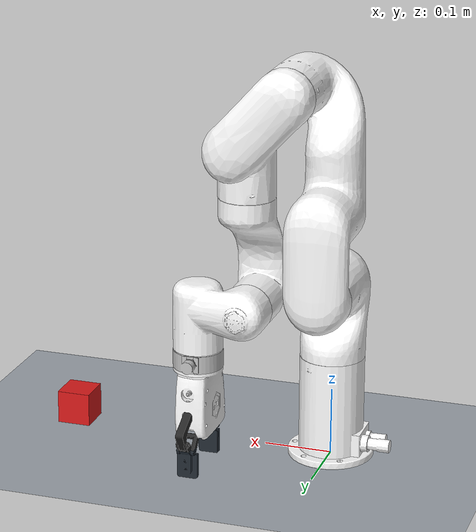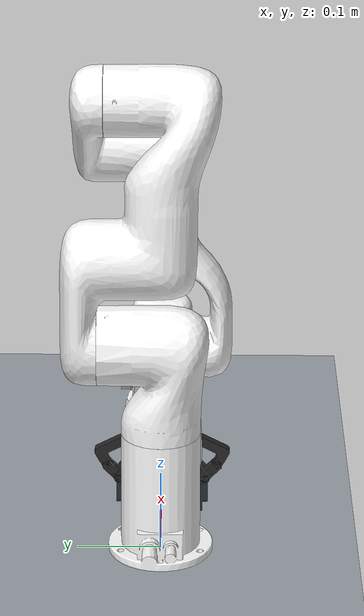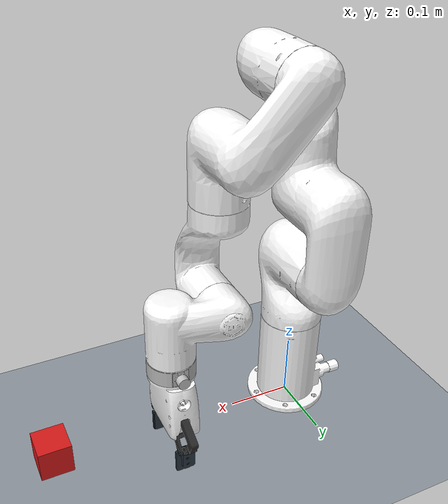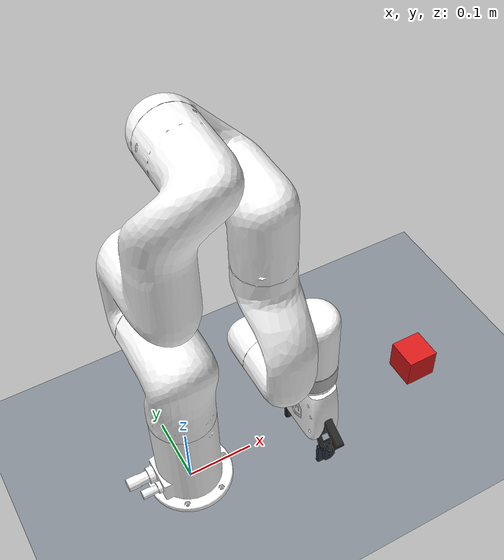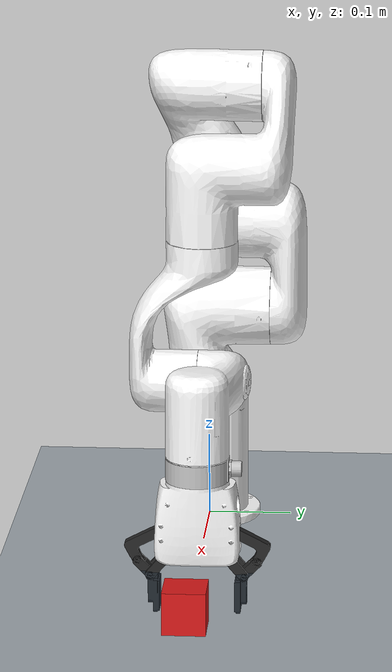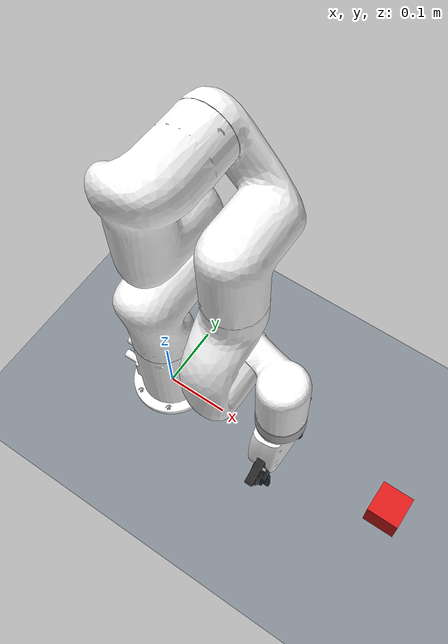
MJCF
<mujoco model="xarm6 scene">
  <include file="xarm6_gripper.xml"/>

  <statistic center="0.2 0 0.4" extent="1.0" meansize="0.05"/>

  <visual>
    <headlight diffuse="0.6 0.6 0.6" ambient="0.3 0.3 0.3" specular="0 0 0"/>
    <rgba haze="0.15 0.25 0.35 1"/>
    <global azimuth="120" elevation="-20" offwidth="1280" offheight="960"/>
  </visual>

  <asset>
    <texture type="skybox" builtin="gradient" rgb1="0.3 0.5 0.7" rgb2="0 0 0" width="512" height="3072"/>
    <texture type="2d" name="groundplane" builtin="checker" mark="edge" rgb1="0.2 0.3 0.4" rgb2="0.1 0.2 0.3"
      markrgb="0.8 0.8 0.8" width="300" height="300"/>
    <material name="groundplane" texture="groundplane" texuniform="true" texrepeat="5 5" reflectance="0.2"/>
  </asset>

  <worldbody>
    <light pos="0 0 1.5" dir="0 0 -1" directional="true"/>
    <geom name="floor" size="0 0 0.05" type="plane" material="groundplane"/>

    <!-- 5 cm red cube, 0.4 m in front of the arm base, well inside the reach. -->
    <body name="red_block" pos="0.4 0 0.025">
      <freejoint name="red_block_joint"/>
      <geom name="red_block" type="box" size="0.025 0.025 0.025" mass="0.1" rgba="0.85 0.1 0.1 1"
        friction="1 0.005 0.0001"/>
    </body>
  </worldbody>

  <keyframe>
    <key name="home"
      qpos="0 -0.3 -1.2 0 1.5 0
            0 0 0 0 0 0
            0.4 0 0.025 1 0 0 0"
      ctrl="0 -0.3 -1.2 0 1.5 0 0"/>
  </keyframe>
</mujoco>

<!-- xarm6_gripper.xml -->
<mujoco model="UF_ROBOT">
  <compiler angle="radian" autolimits="true"/>

  <!-- implicitfast keeps the stiff gripper linkage stable. -->
  <option integrator="implicitfast"/>

  <asset>
    <material name="gripper_white" rgba="1 1 1 1"/>
    <material name="gripper_black" rgba="0.149 0.149 0.149 1"/>

    <mesh name="link_base" file="/home/jtr20003/xarm/xarm_ros2/xarm_description/meshes/xarm6/visual/link_base.stl"/>
    <mesh name="link1" file="/home/jtr20003/xarm/xarm_ros2/xarm_description/meshes/xarm6/visual/link1.stl"/>
    <mesh name="link2" file="/home/jtr20003/xarm/xarm_ros2/xarm_description/meshes/xarm6/visual/link2.stl"/>
    <mesh name="link3" file="/home/jtr20003/xarm/xarm_ros2/xarm_description/meshes/xarm6/visual/link3.stl"/>
    <mesh name="link4" file="/home/jtr20003/xarm/xarm_ros2/xarm_description/meshes/xarm6/visual/link4.stl"/>
    <mesh name="link5" file="/home/jtr20003/xarm/xarm_ros2/xarm_description/meshes/xarm6/visual/link5.stl"/>
    <mesh name="link6" file="/home/jtr20003/xarm/xarm_ros2/xarm_description/meshes/xarm6/visual/link6.stl"/>
    <mesh name="end_tool" file="/home/jtr20003/xarm/xarm_ros2/xarm_description/meshes/end_tool/collision/end_tool.stl"/>
    <mesh name="base_link" file="/home/jtr20003/xarm/xarm_ros2/xarm_description/meshes/gripper/xarm/base_link.stl"/>
    <mesh name="left_outer_knuckle" file="/home/jtr20003/xarm/xarm_ros2/xarm_description/meshes/gripper/xarm/left_outer_knuckle.stl"/>
    <mesh name="left_finger" file="/home/jtr20003/xarm/xarm_ros2/xarm_description/meshes/gripper/xarm/left_finger.stl"/>
    <mesh name="left_inner_knuckle" file="/home/jtr20003/xarm/xarm_ros2/xarm_description/meshes/gripper/xarm/left_inner_knuckle.stl"/>
    <mesh name="right_outer_knuckle" file="/home/jtr20003/xarm/xarm_ros2/xarm_description/meshes/gripper/xarm/right_outer_knuckle.stl"/>
    <mesh name="right_finger" file="/home/jtr20003/xarm/xarm_ros2/xarm_description/meshes/gripper/xarm/right_finger.stl"/>
    <mesh name="right_inner_knuckle" file="/home/jtr20003/xarm/xarm_ros2/xarm_description/meshes/gripper/xarm/right_inner_knuckle.stl"/>
  </asset>

  <default>
    <default class="xarm_gripper">
      <geom type="mesh" material="gripper_black"/>
      <joint range="0 0.85" axis="1 0 0" armature="0.1" frictionloss="1"/>
      <site size="0.001" rgba="1 0 0 1" group="4"/>
      <!-- Outer knuckles: driven by the actuator through the "split" tendon. -->
      <default class="driver">
        <joint armature="0.005" damping="0.1" solreflimit="0.005 1"/>
      </default>
      <!-- Fingers: passive, closed into a four-bar loop by the connect constraints below. -->
      <default class="follower">
        <joint solreflimit="0.005 1"/>
      </default>
      <!-- Inner knuckles: passive with a light spring. -->
      <default class="spring_link">
        <joint stiffness="0.05" springref="2.62" damping="0.00125"/>
      </default>
      <!-- Finger meshes are visual only; grasping contact happens on these pads. -->
      <default class="visual">
        <geom contype="0" conaffinity="0" group="2"/>
      </default>
      <default class="pad_box1">
        <geom type="box" friction="0.7" solimp="0.95 0.99 0.001" solref="0.004 1" mass="0" priority="1"
          size="0.015 0.002 0.0095" rgba="0.0 0.1 0.7 1" group="3"/>
      </default>
      <default class="pad_box2">
        <geom type="box" friction="0.6" solimp="0.95 0.99 0.001" solref="0.004 1" mass="0" priority="1"
          size="0.015 0.002 0.0095" rgba="0.0 0.5 0.5 1" group="3"/>
      </default>
    </default>
  </default>

  <worldbody>
    <body name="link_base">
      <inertial pos="0 0 0.09103" quat="0.981065 0.000747228 -0.0021866 -0.193666" mass="2.7" diaginertia="0.00495024 0.00494031 0.00221894"/>
      <geom pos="0 0 0" quat="1 0 0 0" type="mesh" contype="0" conaffinity="0" group="1" rgba="1 1 1 1" density="0" mesh="link_base"/>
      <geom pos="0 0 0" quat="1 0 0 0" type="mesh" rgba="1 1 1 1" mesh="link_base"/>
      <body name="link1" pos="0 0 0.267">
        <inertial pos="0.00022 0.02951 -0.0124" quat="0.976139 -0.216079 -0.00387305 -0.0211673" mass="2.3814" diaginertia="0.00585697 0.00544434 0.00312315"/>
        <joint name="joint1" range="-6.28319 6.28319" actuatorfrcrange="-50 50" armature="0.1" damping="1" frictionloss="1"/>
        <geom quat="1 0 0 0" type="mesh" contype="0" conaffinity="0" group="1" rgba="1 1 1 1" density="0" mesh="link1"/>
        <geom quat="1 0 0 0" type="mesh" rgba="1 1 1 1" mesh="link1"/>
        <body name="link2" quat="0.707105 -0.707108 0 0">
          <inertial pos="0.03881 -0.22783 0.03496" quat="0.635305 0.753023 0.170976 -0.010531" mass="2.2675" diaginertia="0.0294477 0.0281783 0.00383449"/>
          <joint name="joint2" range="-2.059 2.0944" actuatorfrcrange="-50 50" armature="0.1" damping="1" frictionloss="1"/>
          <geom pos="0 0 0" quat="1 0 0 0" type="mesh" contype="0" conaffinity="0" group="1" rgba="1 1 1 1" density="0" mesh="link2"/>
          <geom pos="0 0 0" quat="1 0 0 0" type="mesh" rgba="1 1 1 1" mesh="link2"/>
          <body name="link3" pos="0.0535 -0.2845 0">
            <inertial pos="0.07041 0.11631 0.0107" quat="0.845838 0.425539 -0.293179 0.132369" mass="1.875" diaginertia="0.00714132 0.00699471 0.00196753"/>
            <joint name="joint3" range="-3.927 0.19198" actuatorfrcrange="-32 32" armature="0.1" damping="1" frictionloss="1"/>
            <geom pos="0 0 0" quat="1 0 0 0" type="mesh" contype="0" conaffinity="0" group="1" rgba="1 1 1 1" density="0" mesh="link3"/>
            <geom pos="0 0 0" quat="1 0 0 0" type="mesh" rgba="1 1 1 1" mesh="link3"/>
            <body name="link4" pos="0.0775 0.3425 0" quat="0.707105 -0.707108 0 0">
              <inertial pos="-0.00018 0.01798 -0.02291" quat="0.99929 -0.0369702 0.00179429 -0.00701173" mass="1.3192" diaginertia="0.00489614 0.00447403 0.00132609"/>
              <joint name="joint4" range="-6.28319 6.28319" actuatorfrcrange="-32 32" armature="0.1" damping="1" frictionloss="1"/>
              <geom type="mesh" contype="0" conaffinity="0" group="1" rgba="1 1 1 1" density="0" mesh="link4"/>
              <geom type="mesh" rgba="1 1 1 1" mesh="link4"/>
              <body name="link5" quat="0.707105 0.707108 0 0">
                <inertial pos="0.0651 0.03096 0.00315" quat="-0.223008 0.771309 0.16027 0.574163" mass="1.33854" diaginertia="0.00241824 0.00213367 0.00108731"/>
                <joint name="joint5" range="-1.69297 3.14159" actuatorfrcrange="-32 32" armature="0.1" damping="1" frictionloss="1"/>
                <geom pos="0 0 0" quat="1 0 0 0" type="mesh" contype="0" conaffinity="0" group="1" rgba="1 1 1 1" density="0" mesh="link5"/>
                <geom pos="0 0 0" quat="1 0 0 0" type="mesh" rgba="1 1 1 1" mesh="link5"/>
                <body name="link6" pos="0.076 0.097 0" quat="0.707105 -0.707108 0 0">
                  <inertial pos="0 -0.00677 -0.01098" quat="0.487612 0.512088 -0.512088 0.487612" mass="0.17" diaginertia="0.000132176 9.3e-05 5.85236e-05"/>
                  <joint name="joint6" range="-6.28319 6.28319" actuatorfrcrange="-20 20" armature="0.1" damping="1" frictionloss="1"/>
                  <geom quat="1 0 0 0" type="mesh" contype="0" conaffinity="0" group="1" rgba="0.753 0.753 0.753 1" density="0" mesh="link6"/>
                  <geom quat="1 0 0 0" type="mesh" rgba="0.753 0.753 0.753 1" mesh="end_tool"/>
                  <body name="link_eef">

                    <!-- ===================== xArm gripper ===================== -->
                    <body name="xarm_gripper_base_link" childclass="xarm_gripper">
                      <inertial pos="-0.00065489 -0.0018497 0.048028" quat="0.997403 -0.0717512 -0.0061836 0.000477479" mass="0.54156" diaginertia="0.000471093 0.000332307 0.000254799"/>
                      <geom mesh="base_link" material="gripper_white"/>

                      <body name="left_outer_knuckle" pos="0 0.035 0.059098">
                        <inertial pos="0 0.021559 0.015181" quat="0.47789 0.87842 0 0" mass="0.033618" diaginertia="1.9111e-05 1.79089e-05 1.90167e-06"/>
                        <joint name="left_driver_joint" class="driver"/>
                        <geom mesh="left_outer_knuckle"/>
                        <body name="left_finger" pos="0 0.035465 0.042039">
                          <inertial pos="0 -0.016413 0.029258" quat="0.697634 0.115353 -0.115353 0.697634" mass="0.048304" diaginertia="1.88037e-05 1.7493e-05 3.56792e-06"/>
                          <joint name="left_finger_joint" axis="-1 0 0" class="follower"/>
                          <geom class="visual" mesh="left_finger"/>
                          <geom class="pad_box1" name="left_finger_pad_1" pos="0 -0.024003 0.032"/>
                          <geom class="pad_box2" name="left_finger_pad_2" pos="0 -0.024003 0.050"/>
                        </body>
                      </body>
                      <body name="left_inner_knuckle" pos="0 0.02 0.074098">
                        <inertial pos="1.86601e-06 0.0220468 0.0261335" quat="0.664139 -0.242732 0.242713 0.664146" mass="0.0230126" diaginertia="8.34216e-06 6.0949e-06 2.75601e-06"/>
                        <joint name="left_inner_knuckle_joint" class="spring_link"/>
                        <geom mesh="left_inner_knuckle"/>
                      </body>

                      <body name="right_outer_knuckle" pos="0 -0.035 0.059098">
                        <inertial pos="0 -0.021559 0.015181" quat="0.87842 0.47789 0 0" mass="0.033618" diaginertia="1.9111e-05 1.79089e-05 1.90167e-06"/>
                        <joint name="right_driver_joint" axis="-1 0 0" class="driver"/>
                        <geom mesh="right_outer_knuckle"/>
                        <body name="right_finger" pos="0 -0.035465 0.042039">
                          <inertial pos="0 0.016413 0.029258" quat="0.697634 -0.115356 0.115356 0.697634" mass="0.048304" diaginertia="1.88038e-05 1.7493e-05 3.56779e-06"/>
                          <joint name="right_finger_joint" class="follower"/>
                          <geom class="visual" mesh="right_finger"/>
                          <geom class="pad_box1" name="right_finger_pad_1" pos="0 0.024003 0.032"/>
                          <geom class="pad_box2" name="right_finger_pad_2" pos="0 0.024003 0.050"/>
                        </body>
                      </body>
                      <body name="right_inner_knuckle" pos="0 -0.02 0.074098">
                        <inertial pos="1.866e-06 -0.022047 0.026133" quat="0.66415 0.242702 -0.242721 0.664144" mass="0.023013" diaginertia="8.34209e-06 6.0949e-06 2.75601e-06"/>
                        <joint name="right_inner_knuckle_joint" axis="-1 0 0" class="spring_link"/>
                        <geom mesh="right_inner_knuckle"/>
                      </body>

                      <!-- Tool center point, between the fingertips. -->
                      <body name="link_tcp" pos="0 0 0.172"/>
                      <site name="link_tcp" pos="0 0 0.172"/>
                    </body>

                  </body>
                </body>
              </body>
            </body>
          </body>
        </body>
      </body>
    </body>
  </worldbody>

  <!-- Linkage parts that overlap by design should not collide with each other. -->
  <contact>
    <exclude body1="right_inner_knuckle" body2="right_outer_knuckle"/>
    <exclude body1="right_inner_knuckle" body2="right_finger"/>
    <exclude body1="left_inner_knuckle" body2="left_outer_knuckle"/>
    <exclude body1="left_inner_knuckle" body2="left_finger"/>
  </contact>

  <!-- One actuator drives both outer knuckles through this tendon. -->
  <tendon>
    <fixed name="split">
      <joint joint="right_driver_joint" coef="0.5"/>
      <joint joint="left_driver_joint" coef="0.5"/>
    </fixed>
  </tendon>

  <equality>
    <!-- Close each finger's four-bar loop (finger tip pinned to its inner knuckle). -->
    <connect anchor="0 0.015 0.015" body1="right_finger" body2="right_inner_knuckle" solref="0.005 1"/>
    <connect anchor="0 -0.015 0.015" body1="left_finger" body2="left_inner_knuckle" solref="0.005 1"/>
    <!-- Keep both sides moving together. -->
    <joint joint1="left_driver_joint" joint2="right_driver_joint" polycoef="0 1 0 0 0" solref="0.005 1"/>
  </equality>

  <actuator>
    <general name="act1" joint="joint1" ctrlrange="-6.28319 6.28319" ctrllimited="true" biastype="affine" gainprm="2000" biasprm="0 -2000 -200"/>
    <general name="act2" joint="joint2" ctrlrange="-2.059 2.0944" ctrllimited="true" biastype="affine" gainprm="2000" biasprm="0 -2000 -200"/>
    <general name="act3" joint="joint3" ctrlrange="-3.927 0.19198" ctrllimited="true" biastype="affine" gainprm="2000" biasprm="0 -2000 -200"/>
    <general name="act4" joint="joint4" ctrlrange="-6.28319 6.28319" ctrllimited="true" biastype="affine" gainprm="2000" biasprm="0 -2000 -200"/>
    <general name="act5" joint="joint5" ctrlrange="-1.69297 3.14159" ctrllimited="true" biastype="affine" gainprm="2000" biasprm="0 -2000 -200"/>
    <general name="act6" joint="joint6" ctrlrange="-6.28319 6.28319" ctrllimited="true" biastype="affine" gainprm="2000" biasprm="0 -2000 -200"/>
    <!-- Gripper: ctrl 0 = fully open, 255 = fully closed (same scale as the real xArm gripper). -->
    <general name="gripper" tendon="split" forcerange="-50 50" ctrlrange="0 255" biastype="affine" gainprm="0.333"
      biasprm="0 -100 -10"/>
  </actuator>
</mujoco>
